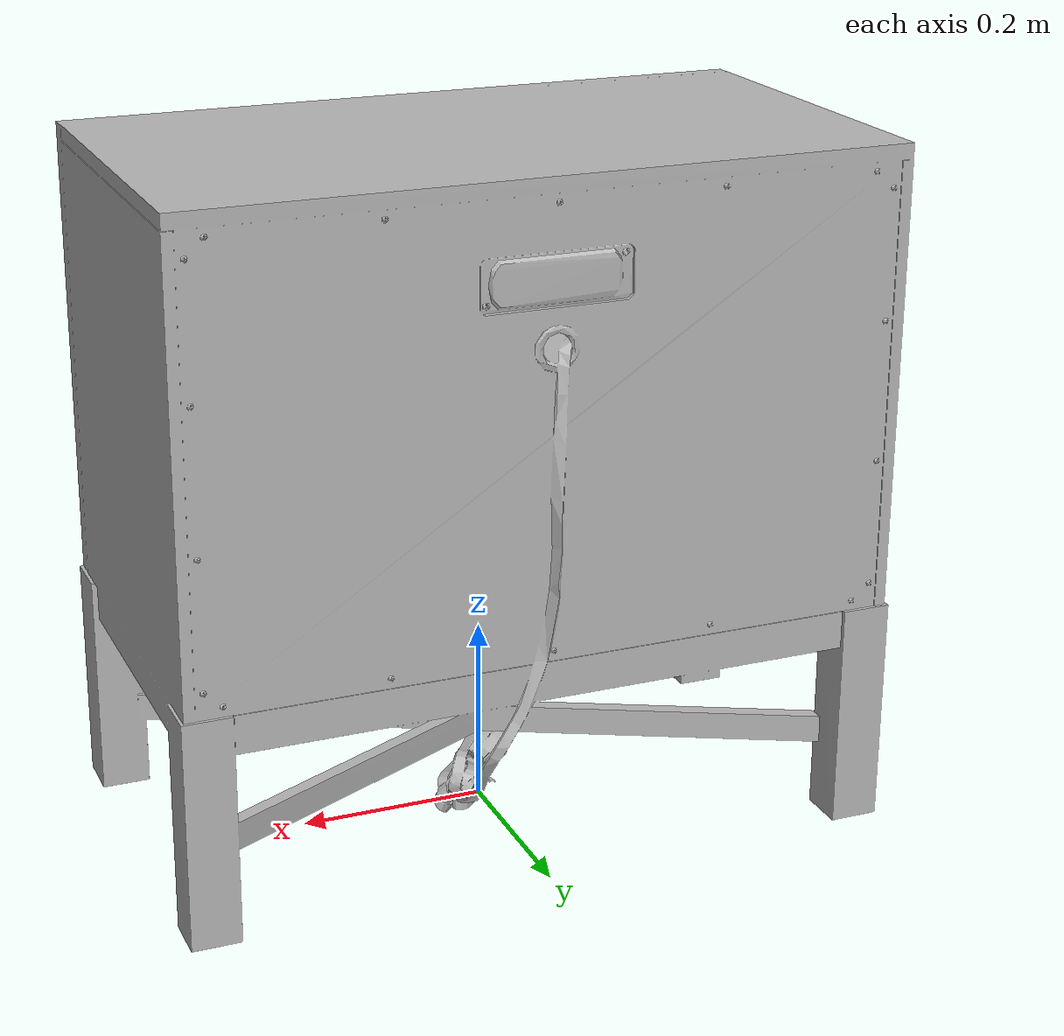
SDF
<sdf version="1.6">
	<model name="Nightstands_O86bb94a2231c_lod0">
		<link name="main_link">
			<visual name="visual_RootNode">
				<geometry>
					<mesh>
						<uri>model://Nightstands_O86bb94a2231c_lod0/meshes/visual_RootNode.dae</uri>
					</mesh>
				</geometry>
			</visual>
			<collision name="collision_RootNode_lod0_0">
				<geometry>
					<mesh>
						<uri>model://Nightstands_O86bb94a2231c_lod0/meshes/collision_RootNode_lod0_0.dae</uri>
					</mesh>
				</geometry>
			</collision>
		</link>
	</model>
</sdf>
